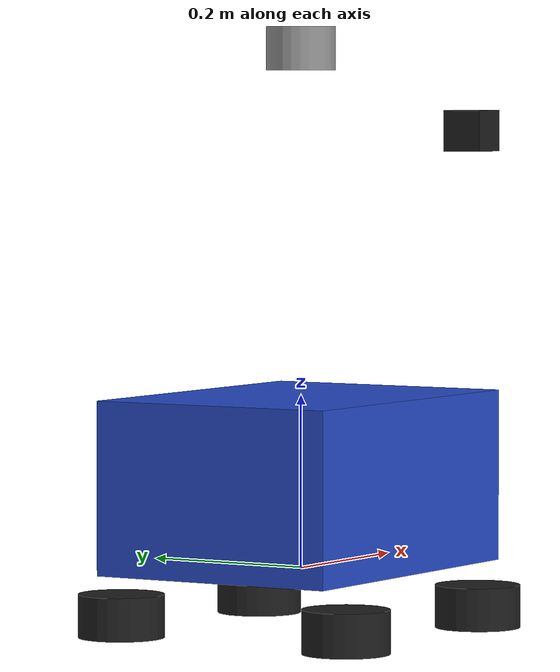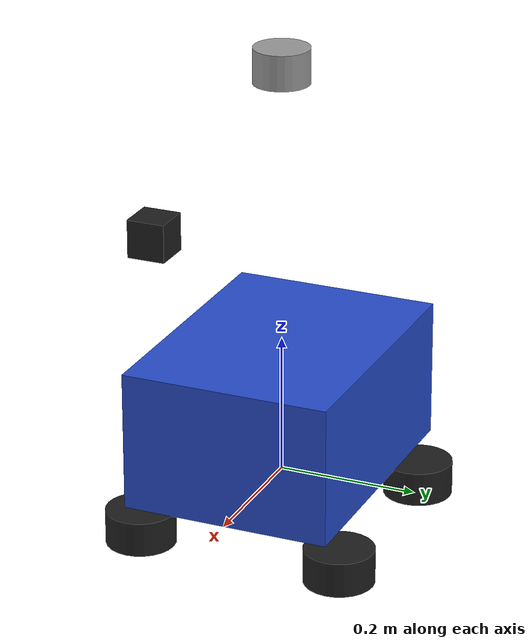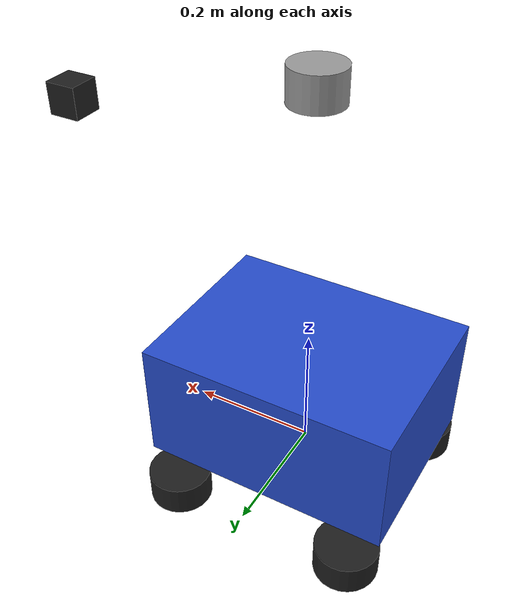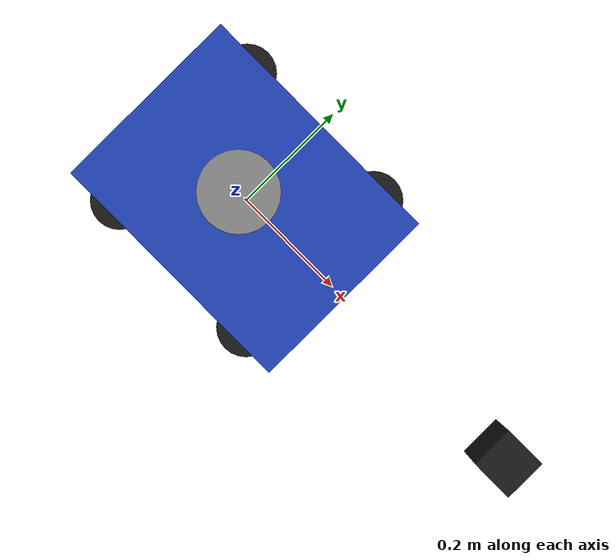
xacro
<?xml version="1.0"?>
<robot xmlns:xacro="http://www.ros.org/wiki/xacro" name="delivery_bot">

  <!-- Macros for simplifying wheel creation -->
  <xacro:macro name="wheel" params="prefix x y">
    <link name="${prefix}_wheel">
      <visual>
        <geometry>
          <cylinder length="0.05" radius="0.05"/>
        </geometry>
        <origin xyz="0 0 0" rpy="0 0 0"/>
        <material name="black"/>
      </visual>
      <collision>
        <geometry>
          <cylinder length="0.05" radius="0.05"/>
        </geometry>
        <origin xyz="0 0 0" rpy="0 0 0"/>
      </collision>
      <inertial>
        <mass value="0.2"/>
        <inertia ixx="0.001" ixy="0.0" ixz="0.0" iyy="0.001" iyz="0.0" izz="0.001"/>
      </inertial>
    </link>

    <joint name="${prefix}_joint" type="continuous">
      <parent link="base_link"/>
      <child link="${prefix}_wheel"/>
      <origin xyz="${x} ${y} -0.05" rpy="0 0 0"/>
      <axis xyz="0 1 0"/>
      <limit effort="5" velocity="10"/>
    </joint>

    <transmission name="${prefix}_trans">
      <type>transmission_interface/SimpleTransmission</type>
      <joint name="${prefix}_joint">
        <hardwareInterface>hardware_interface/VelocityJointInterface</hardwareInterface>
      </joint>
      <actuator name="${prefix}_motor">
        <hardwareInterface>hardware_interface/VelocityJointInterface</hardwareInterface>
        <mechanicalReduction>1</mechanicalReduction>
      </actuator>
    </transmission>
  </xacro:macro>

  <!-- Base -->
  <link name="base_link">
    <visual>
      <geometry>
        <box size="0.4 0.3 0.2"/>
      </geometry>
      <origin xyz="0 0 0.1" rpy="0 0 0"/>
      <material name="blue"/>
    </visual>
    <collision>
      <geometry>
        <box size="0.4 0.3 0.2"/>
      </geometry>
      <origin xyz="0 0 0.1" rpy="0 0 0"/>
    </collision>
    <inertial>
      <mass value="3.0"/>
      <inertia ixx="0.03" ixy="0" ixz="0" iyy="0.03" iyz="0" izz="0.03"/>
    </inertial>
  </link>

  <!-- Wheels -->
  <xacro:wheel prefix="rear_left" x="-0.15" y="0.15"/>
  <xacro:wheel prefix="rear_right" x="-0.15" y="-0.15"/>
  <xacro:wheel prefix="front_left" x="0.15" y="0.15"/>
  <xacro:wheel prefix="front_right" x="0.15" y="-0.15"/>

  <!-- Camera -->
  <link name="camera_link">
    <visual>
      <geometry>
        <box size="0.05 0.05 0.05"/>
      </geometry>
      <origin xyz="0.2 0 0.25" rpy="0 0 0"/>
      <material name="black"/>
    </visual>
  </link>

  <joint name="camera_joint" type="fixed">
    <parent link="base_link"/>
    <child link="camera_link"/>
    <origin xyz="0.2 0 0.25" rpy="0 0 0"/>
  </joint>

  <gazebo reference="camera_link">
    <sensor name="camera_sensor" type="camera">
      <camera>
        <horizontal_fov>1.3962634</horizontal_fov>
        <image>
          <width>640</width>
          <height>480</height>
          <format>R8G8B8</format>
        </image>
        <clip>
          <near>0.1</near>
          <far>100</far>
        </clip>
      </camera>
      <always_on>true</always_on>
      <update_rate>30</update_rate>
      <visualize>true</visualize>
      <plugin name="camera_controller" filename="libgazebo_ros_camera.so">
        <camera_name>rgb_camera</camera_name>
        <image_topic_name>image_raw</image_topic_name>
        <camera_info_topic_name>camera_info</camera_info_topic_name>
        <frame_name>camera_link</frame_name>
      </plugin>
    </sensor>
  </gazebo>

  <!-- LiDAR -->
  <link name="lidar_link">
    <visual>
      <geometry>
        <cylinder length="0.05" radius="0.04"/>
      </geometry>
      <origin xyz="0 0 0.3" rpy="0 0 0"/>
      <material name="gray"/>
    </visual>
  </link>

  <joint name="lidar_joint" type="fixed">
    <parent link="base_link"/>
    <child link="lidar_link"/>
    <origin xyz="0 0 0.3" rpy="0 0 0"/>
  </joint>

  <gazebo reference="lidar_link">
    <sensor name="lidar_sensor" type="ray">
      <ray>
        <scan>
          <horizontal>
            <samples>360</samples>
            <resolution>1</resolution>
            <min_angle>-3.14</min_angle>
            <max_angle>3.14</max_angle>
          </horizontal>
        </scan>
        <range>
          <min>0.12</min>
          <max>5.0</max>
        </range>
        <noise>
          <type>gaussian</type>
          <mean>0.0</mean>
          <stddev>0.01</stddev>
        </noise>
      </ray>
      <plugin name="gazebo_ros_laser_controller" filename="libgazebo_ros_ray_sensor.so">
        <topicName>scan</topicName>
        <frameName>lidar_link</frameName>
      </plugin>
    </sensor>
  </gazebo>

  <ros2_control name="DeliveryBotHardware" type="system">
  <hardware>
    <plugin>fake_components/GenericSystem</plugin>
  </hardware>
  <joint name="rear_left_joint">
    <command_interface name="velocity"/>
    <state_interface name="velocity"/>
    <state_interface name="position"/>
  </joint>
  <joint name="rear_right_joint">
    <command_interface name="velocity"/>
    <state_interface name="velocity"/>
    <state_interface name="position"/>
  </joint>
</ros2_control>

</robot>
